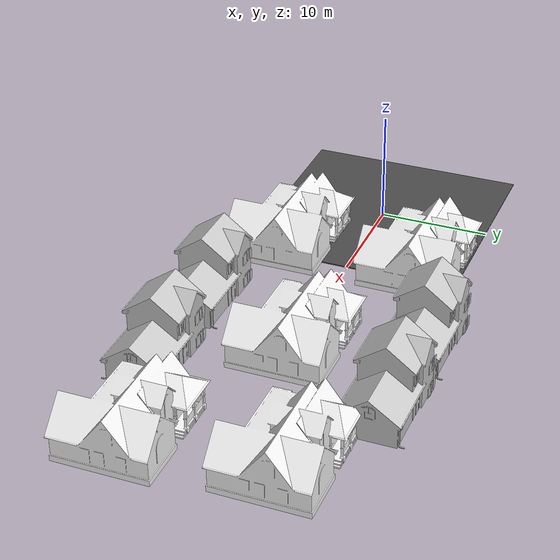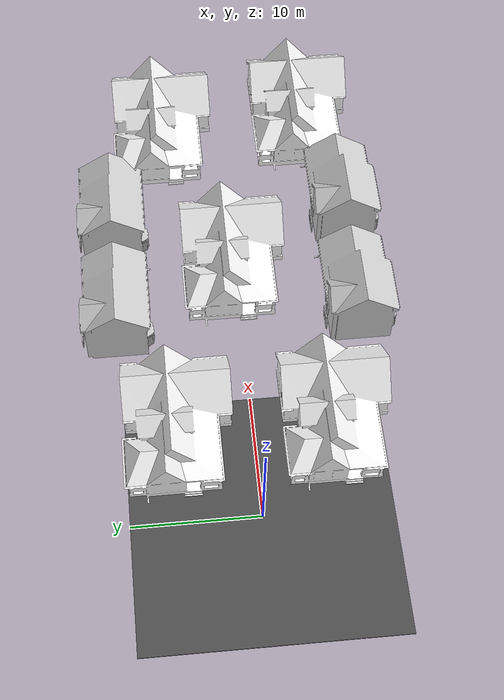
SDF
<sdf version="1.6">
 <world name="default">
  <scene>
   <sky><clouds><speed>12</speed></clouds></sky>
   <ambient>0.4 0.4 0.4 1</ambient>
   <background>0.7 0.7 0.7 1</background>
   <shadows>1</shadows>
  </scene>
  <light name="sun" type="directional">
   <pose>0 0 10 0 -0 0</pose>
   <diffuse>0.8 0.8 0.8 1</diffuse>
   <specular>0.1 0.1 0.1 1</specular>
   <attenuation>
    <range>1000</range>
    <constant>0.9</constant>
    <linear>0.01</linear>
    <quadratic>0.001</quadratic>
   </attenuation>
   <direction>-0.5 0.5 -1</direction>
  </light>
  <model name="asphalt_plane">
   <static>1</static>
   <link name="link">
    <collision name="collision"><geometry><box><size>19.9999 20 0.1</size></box></geometry></collision>
    <visual name="visual">
     <cast_shadows>0</cast_shadows>
     <geometry><box><size>19.9999 20 0.1</size></box></geometry>
     <material>
      <script>
       <uri>model://asphalt_plane/materials/scripts</uri>
       <uri>model://asphalt_plane/materials/textures</uri>
       <name>vrc/asphalt</name>
      </script>
     </material>
    </visual>
   </link>
  </model>
  <physics name="default_physics" default="0" type="ode">
   <ode>
    <solver>
     <type>quick</type>
     <iters>50</iters>
     <sor>1</sor>
     <use_dynamic_moi_rescaling>0</use_dynamic_moi_rescaling>
    </solver>
    <constraints>
     <cfm>0</cfm>
     <erp>0.2</erp>
     <contact_max_correcting_vel>100</contact_max_correcting_vel>
     <contact_surface_layer>0.001</contact_surface_layer>
    </constraints>
   </ode>
   <max_step_size>0.004</max_step_size>
   <real_time_factor>1</real_time_factor>
   <real_time_update_rate>250</real_time_update_rate>
  </physics>
  <gravity>0 0 -9.8066</gravity>
  <magnetic_field>6e-06 2.3e-05 -4.2e-05</magnetic_field>
  <atmosphere type="adiabatic"/>
  <spherical_coordinates>
   <surface_model>EARTH_WGS84</surface_model>
   <latitude_deg>0</latitude_deg>
   <longitude_deg>0</longitude_deg>
   <elevation>0</elevation>
   <heading_deg>0</heading_deg>
  </spherical_coordinates>
  <model name="House 1">
   <static>1</static>
   <link name="link">
    <collision name="collision">
     <geometry><mesh><uri>model://house_1/meshes/house_1.dae</uri><scale>1 1 1</scale></mesh></geometry>
    </collision>
    <visual name="visual">
     <geometry><mesh><uri>model://house_1/meshes/house_1.dae</uri><scale>1 1 1</scale></mesh></geometry>
     <material>
      <script>
       <uri>model://house_1/materials/scripts</uri>
       <uri>model://house_1/materials/textures</uri>
       <name>House_1/Diffuse</name>
      </script>
      <shader type="normal_map_object_space"><normal_map>House_1_Normal.png</normal_map></shader>
     </material>
    </visual>
   </link>
   <pose>7.5787 6.12194 0 0 -0 0</pose>
  </model>
  <model name="House 1_0">
   <static>1</static>
   <link name="link">
    <collision name="collision">
     <geometry><mesh><uri>model://house_1/meshes/house_1.dae</uri><scale>1 1 1</scale></mesh></geometry>
    </collision>
    <visual name="visual">
     <geometry><mesh><uri>model://house_1/meshes/house_1.dae</uri><scale>1 1 1</scale></mesh></geometry>
     <material>
      <script>
       <uri>model://house_1/materials/scripts</uri>
       <uri>model://house_1/materials/textures</uri>
       <name>House_1/Diffuse</name>
      </script>
      <shader type="normal_map_object_space"><normal_map>House_1_Normal.png</normal_map></shader>
     </material>
    </visual>
   </link>
   <pose>7.50113 -6.1689 0 0 -0 0</pose>
  </model>
  <model name="House 1_1">
   <static>1</static>
   <link name="link">
    <collision name="collision">
     <geometry><mesh><uri>model://house_1/meshes/house_1.dae</uri><scale>1 1 1</scale></mesh></geometry>
    </collision>
    <visual name="visual">
     <geometry><mesh><uri>model://house_1/meshes/house_1.dae</uri><scale>1 1 1</scale></mesh></geometry>
     <material>
      <script>
       <uri>model://house_1/materials/scripts</uri>
       <uri>model://house_1/materials/textures</uri>
       <name>House_1/Diffuse</name>
      </script>
      <shader type="normal_map_object_space"><normal_map>House_1_Normal.png</normal_map></shader>
     </material>
    </visual>
   </link>
   <pose>22.9012 0.446576 0 0 -0 0</pose>
  </model>
  <model name="House 3">
   <static>1</static>
   <link name="link">
    <collision name="collision">
     <geometry><mesh><uri>model://house_3/meshes/house_3.dae</uri><scale>1 1 1</scale></mesh></geometry>
    </collision>
    <visual name="visual">
     <geometry><mesh><uri>model://house_3/meshes/house_3.dae</uri><scale>1 1 1</scale></mesh></geometry>
     <material>
      <script>
       <uri>model://house_3/materials/scripts</uri>
       <uri>model://house_3/materials/textures</uri>
       <name>House_3/Diffuse</name>
      </script>
     </material>
    </visual>
   </link>
   <pose>19.4209 10.0751 0 0 -0 0</pose>
  </model>
  <model name="House 3_0">
   <static>1</static>
   <link name="link">
    <collision name="collision">
     <geometry><mesh><uri>model://house_3/meshes/house_3.dae</uri><scale>1 1 1</scale></mesh></geometry>
    </collision>
    <visual name="visual">
     <geometry><mesh><uri>model://house_3/meshes/house_3.dae</uri><scale>1 1 1</scale></mesh></geometry>
     <material>
      <script>
       <uri>model://house_3/materials/scripts</uri>
       <uri>model://house_3/materials/textures</uri>
       <name>House_3/Diffuse</name>
      </script>
     </material>
    </visual>
   </link>
   <pose>28.7457 10.0003 0 0 -0 0</pose>
  </model>
  <model name="House 3_1">
   <static>1</static>
   <link name="link">
    <collision name="collision">
     <geometry><mesh><uri>model://house_3/meshes/house_3.dae</uri><scale>1 1 1</scale></mesh></geometry>
    </collision>
    <visual name="visual">
     <geometry><mesh><uri>model://house_3/meshes/house_3.dae</uri><scale>1 1 1</scale></mesh></geometry>
     <material>
      <script>
       <uri>model://house_3/materials/scripts</uri>
       <uri>model://house_3/materials/textures</uri>
       <name>House_3/Diffuse</name>
      </script>
     </material>
    </visual>
   </link>
   <pose>19.3613 -9.64989 0 0 -0 0</pose>
  </model>
  <model name="House 3_2">
   <static>1</static>
   <link name="link">
    <collision name="collision">
     <geometry><mesh><uri>model://house_3/meshes/house_3.dae</uri><scale>1 1 1</scale></mesh></geometry>
    </collision>
    <visual name="visual">
     <geometry><mesh><uri>model://house_3/meshes/house_3.dae</uri><scale>1 1 1</scale></mesh></geometry>
     <material>
      <script>
       <uri>model://house_3/materials/scripts</uri>
       <uri>model://house_3/materials/textures</uri>
       <name>House_3/Diffuse</name>
      </script>
     </material>
    </visual>
   </link>
   <pose>29.0945 -9.64402 0 0 -0 0</pose>
  </model>
  <model name="House 1_2">
   <static>1</static>
   <link name="link">
    <collision name="collision">
     <geometry><mesh><uri>model://house_1/meshes/house_1.dae</uri><scale>1 1 1</scale></mesh></geometry>
    </collision>
    <visual name="visual">
     <geometry><mesh><uri>model://house_1/meshes/house_1.dae</uri><scale>1 1 1</scale></mesh></geometry>
     <material>
      <script>
       <uri>model://house_1/materials/scripts</uri>
       <uri>model://house_1/materials/textures</uri>
       <name>House_1/Diffuse</name>
      </script>
      <shader type="normal_map_object_space"><normal_map>House_1_Normal.png</normal_map></shader>
     </material>
    </visual>
   </link>
   <pose>37.379 5.43798 0 0 -0 0</pose>
  </model>
  <model name="House 1_3">
   <static>1</static>
   <link name="link">
    <collision name="collision">
     <geometry><mesh><uri>model://house_1/meshes/house_1.dae</uri><scale>1 1 1</scale></mesh></geometry>
    </collision>
    <visual name="visual">
     <geometry><mesh><uri>model://house_1/meshes/house_1.dae</uri><scale>1 1 1</scale></mesh></geometry>
     <material>
      <script>
       <uri>model://house_1/materials/scripts</uri>
       <uri>model://house_1/materials/textures</uri>
       <name>House_1/Diffuse</name>
      </script>
      <shader type="normal_map_object_space"><normal_map>House_1_Normal.png</normal_map></shader>
     </material>
    </visual>
   </link>
   <pose>38.414 -6.85141 0 0 -0 0</pose>
  </model>
 </world>
</sdf>
